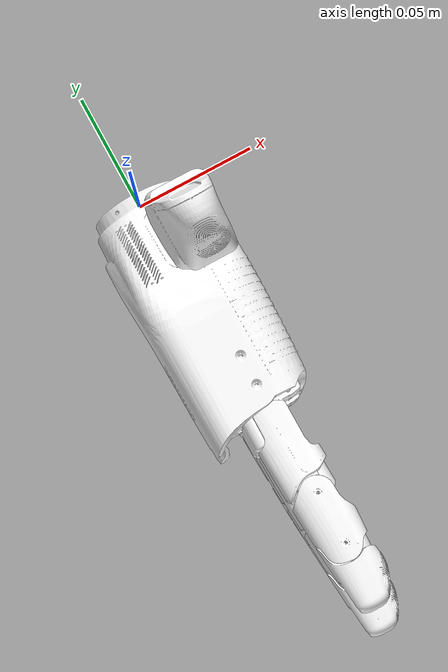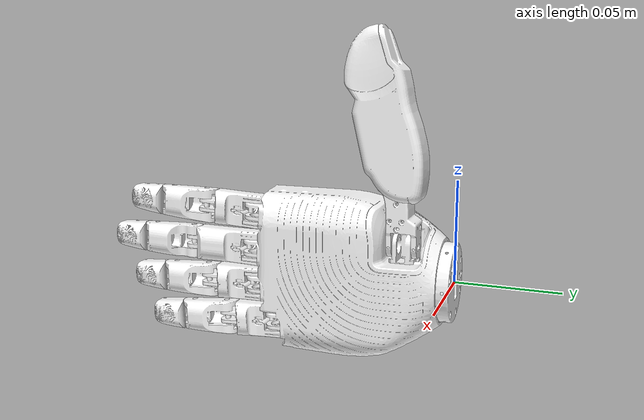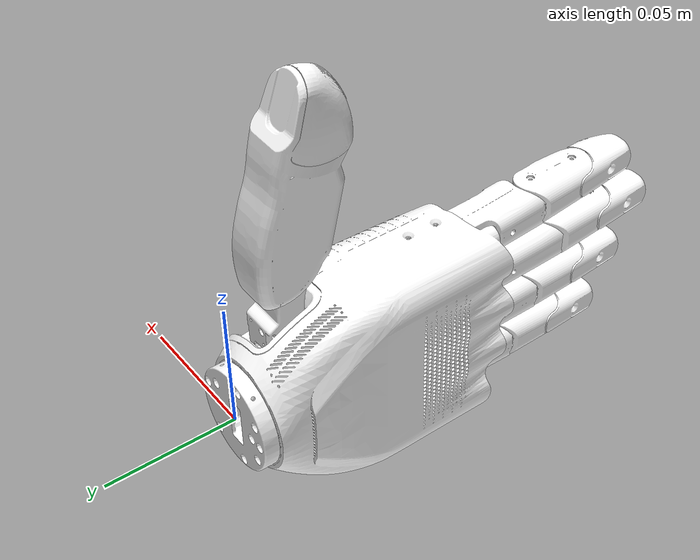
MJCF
<mujoco model="CASIAHAND-M-Right">
  <compiler angle="radian"/>

  <asset>
    <mesh name="right_base_link" content_type="model/stl" file="./meshes/right_base_link.STL"/>
    <mesh name="right_thumb_proximal_link" content_type="model/stl" file="./meshes/right_thumb_proximal_link.STL"/>
    <mesh name="right_thumb_intermediate_link" content_type="model/stl" file="./meshes/right_thumb_intermediate_link.STL"/>
    <mesh name="right_index_proximal_link" content_type="model/stl" file="./meshes/right_index_proximal_link.STL"/>
    <mesh name="right_index_intermediate_link" content_type="model/stl" file="./meshes/right_index_intermediate_link.STL"/>
    <mesh name="right_index_distal_link" content_type="model/stl" file="./meshes/right_index_distal_link.STL"/>
    <mesh name="right_middle_proximal_link" content_type="model/stl" file="./meshes/right_middle_proximal_link.STL"/>
    <mesh name="right_middle_intermediate_link" content_type="model/stl" file="./meshes/right_middle_intermediate_link.STL"/>
    <mesh name="right_middle_distal_link" content_type="model/stl" file="./meshes/right_middle_distal_link.STL"/>
    <mesh name="right_ring_proximal_link" content_type="model/stl" file="./meshes/right_ring_proximal_link.STL"/>
    <mesh name="right_ring_intermediate_link" content_type="model/stl" file="./meshes/right_ring_intermediate_link.STL"/>
    <mesh name="right_ring_distal_link" content_type="model/stl" file="./meshes/right_ring_distal_link.STL"/>
    <mesh name="right_pinky_proximal_link" content_type="model/stl" file="./meshes/right_pinky_proximal_link.STL"/>
    <mesh name="right_pinky_intermediate_link" content_type="model/stl" file="./meshes/right_pinky_intermediate_link.STL"/>
    <mesh name="right_pinky_distal_link" content_type="model/stl" file="./meshes/right_pinky_distal_link.STL"/>
  </asset>

  <worldbody>
    <geom quat="0.000563088 -0.000563088 -0.707107 0.707107" type="mesh" rgba="1 1 1 1" mesh="right_base_link"/>
    <body name="right_thumb_proximal_link" pos="0.00849751 -0.0214086 0.018144" quat="0.000563088 -0.000563088 -0.707107 0.707107">
      <inertial pos="0.000552577 -0.0149644 0.00352537" quat="0.523831 0.44078 -0.460191 0.565277" mass="0.00377121" diaginertia="4.04593e-07 3.88514e-07 1.41352e-07"/>
      <joint name="right_thumb_proximal" pos="0 0 0" axis="0 0 -1" range="0 1.57"/>
      <geom type="mesh" rgba="1 1 1 1" mesh="right_thumb_proximal_link"/>
      <body name="right_thumb_intermediate_link" pos="-0.0048 -0.031252 0.0076698">
        <inertial pos="0.00542004 -0.0298427 0.0038888" quat="0.832698 0.552971 0.0157525 -0.0242584" mass="0.016765" diaginertia="5.76251e-06 5.74264e-06 1.58844e-06"/>
        <joint name="right_thumb_intermediate" pos="0 0 0" axis="-1 0 0" range="0 1.57"/>
        <geom type="mesh" rgba="1 1 1 1" mesh="right_thumb_intermediate_link"/>
      </body>
    </body>
    <body name="right_index_proximal_link" pos="0.00427881 -0.103097 0.031233" quat="0.000577635 -0.000548155 -0.688354 0.725374">
      <inertial pos="0.00127232 0.00208807 0.0132738" quat="0.999852 0.000346355 0.0165625 0.00462127" mass="0.00492229" diaginertia="5.51096e-07 5.28454e-07 2.64969e-07"/>
      <joint name="right_index_proximal" pos="0 0 0" axis="0 -1 0" range="0 1.57"/>
      <geom type="mesh" rgba="1 1 1 1" mesh="right_index_proximal_link"/>
      <body name="right_index_intermediate_link" pos="0 0.0023761 0.03">
        <inertial pos="0.00235422 0.0110213 -0.0726409" quat="0.949311 -0.312475 0.00425408 -0.0339135" mass="0.0908177" diaginertia="0.00030426 0.000209388 0.00012477"/>
        <joint name="right_index_intermediate" pos="0 0 0" axis="0 -1 0" range="0 1.57"/>
        <geom type="mesh" rgba="1 1 1 1" mesh="right_index_intermediate_link"/>
        <body name="right_index_distal_link" pos="0 0 0.02">
          <inertial pos="-0.00149754 -0.000369135 0.0125046" quat="0.991559 -0.000293402 0.128925 0.0137619" mass="0.000998983" diaginertia="5.02044e-08 3.99291e-08 2.12571e-08"/>
          <joint name="right_index_distal" pos="0 0 0" axis="0 -1 0" range="0 0.785"/>
          <geom type="mesh" rgba="1 1 1 1" mesh="right_index_distal_link"/>
        </body>
      </body>
    </body>
    <body name="right_middle_proximal_link" pos="0.00427661 -0.104477 0.011722" quat="0.00056798 -0.000558153 -0.700909 0.71325">
      <inertial pos="0.00235424 -0.00465453 -0.0431944" quat="0.95462 -0.29586 0.0048453 -0.0338341" mass="0.0908177" diaginertia="0.00030426 0.000209388 0.00012477"/>
      <joint name="right_middle_proximal" pos="0 0 0" axis="0 -1 0" range="0 1.57"/>
      <geom type="mesh" rgba="1 1 1 1" mesh="right_middle_proximal_link"/>
      <body name="right_middle_intermediate_link" pos="0 0.003479 0.037">
        <inertial pos="-3.94396e-07 0.00136206 -9.13323e-08" quat="0.707107 0.707107 0 0" mass="0.000110031" diaginertia="2.19218e-09 2.18237e-09 1.64042e-10"/>
        <joint name="right_middle_intermediate" pos="0 0 0" axis="0 -1 0" range="0 1.57"/>
        <geom type="mesh" rgba="1 1 1 1" mesh="right_middle_intermediate_link"/>
        <body name="right_middle_distal_link" pos="0 -0.000975 0.023">
          <inertial pos="-0.00149761 -0.000384091 0.0125045" quat="0.991558 -0.000299216 0.128929 0.0137449" mass="0.000998993" diaginertia="5.0206e-08 3.99308e-08 2.12569e-08"/>
          <joint name="right_middle_distal" pos="0 0 0" axis="0 -1 0" range="0 0.785"/>
          <geom type="mesh" rgba="1 1 1 1" mesh="right_middle_distal_link"/>
        </body>
      </body>
    </body>
    <body name="right_ring_proximal_link" pos="0.00427903 -0.102957 -0.0077684" quat="0.000558153 -0.00056798 -0.71325 0.700909">
      <inertial pos="0.00127232 0.00208808 0.0132738" quat="0.999852 0.000346549 0.0165626 0.00461998" mass="0.00492229" diaginertia="5.51096e-07 5.28454e-07 2.64969e-07"/>
      <joint name="right_ring_proximal" pos="0 0 0" axis="0 -1 0" range="0 1.57"/>
      <geom type="mesh" rgba="1 1 1 1" mesh="right_ring_proximal_link"/>
      <body name="right_ring_intermediate_link" pos="0 0.0023761 0.03">
        <inertial pos="0.00235422 -0.0250345 -0.0721456" quat="0.959638 -0.279154 0.00543505 -0.0337444" mass="0.0908177" diaginertia="0.00030426 0.000209388 0.00012477"/>
        <joint name="right_ring_intermediate" pos="0 0 0" axis="0 -1 0" range="0 1.57"/>
        <geom type="mesh" rgba="1 1 1 1" mesh="right_ring_intermediate_link"/>
        <body name="right_ring_distal_link" pos="0 0 0.02">
          <inertial pos="-0.00149758 -0.000369144 0.0125045" quat="0.991558 -0.000297298 0.128929 0.0137578" mass="0.000998989" diaginertia="5.02055e-08 3.99304e-08 2.12569e-08"/>
          <joint name="right_ring_distal" pos="0 0 0" axis="0 -1 0" range="0 0.785"/>
          <geom type="mesh" rgba="1 1 1 1" mesh="right_ring_distal_link"/>
        </body>
      </body>
    </body>
    <body name="right_pinky_proximal_link" pos="0.00429614 -0.092214 -0.02678" quat="0.000548155 -0.000577635 -0.725374 0.688354">
      <inertial pos="0.00127232 0.00219957 0.0132738" quat="0.999852 0.00018885 0.0165642 0.00461612" mass="0.00492229" diaginertia="5.51096e-07 5.28454e-07 2.64969e-07"/>
      <joint name="right_pinky_proximal" pos="0 0 0" axis="0 -1 0" range="0 1.57"/>
      <geom type="mesh" rgba="1 1 1 1" mesh="right_pinky_proximal_link"/>
      <body name="right_pinky_intermediate_link" pos="0 0.0024929 0.03" quat="1 -0.00015764 0 0">
        <inertial pos="0.00235422 -0.0431945 -0.063193" quat="0.964405 -0.262212 0.00602845 -0.0336435" mass="0.0908177" diaginertia="0.00030426 0.000209388 0.00012477"/>
        <joint name="right_pinky_intermediate" pos="0 0 0" axis="0 -1 0" range="0 1.57"/>
        <geom type="mesh" rgba="1 1 1 1" mesh="right_pinky_intermediate_link"/>
        <body name="right_pinky_distal_link" pos="0 0 0.02">
          <inertial pos="-0.0014976 -0.000369148 0.0125045" quat="0.991558 -0.000297025 0.12893 0.013757" mass="0.00099899" diaginertia="5.02056e-08 3.99306e-08 2.12568e-08"/>
          <joint name="right_pinky_distal" pos="0 0 0" axis="0 -1 0" range="0 0.785"/>
          <geom type="mesh" rgba="1 1 1 1" mesh="right_pinky_distal_link"/>
        </body>
      </body>
    </body>
  </worldbody>
</mujoco>
